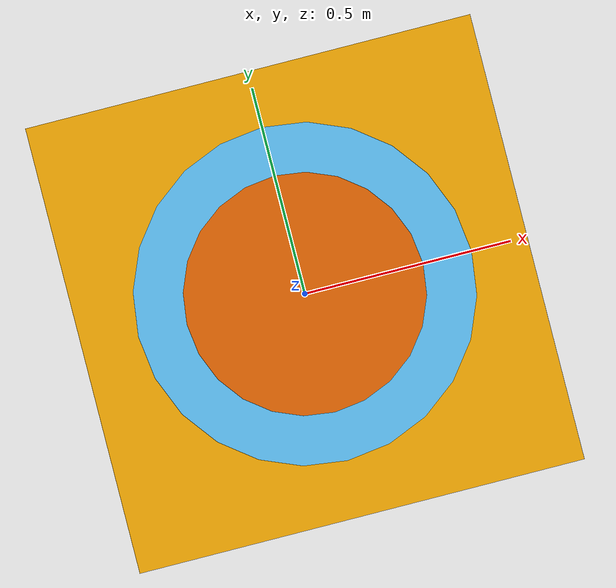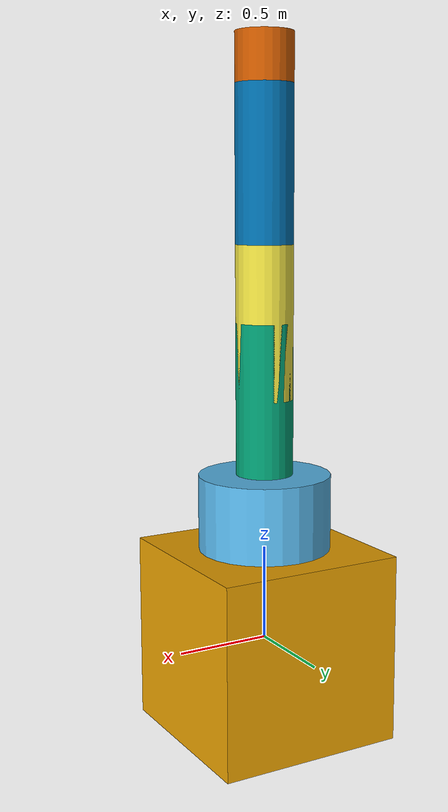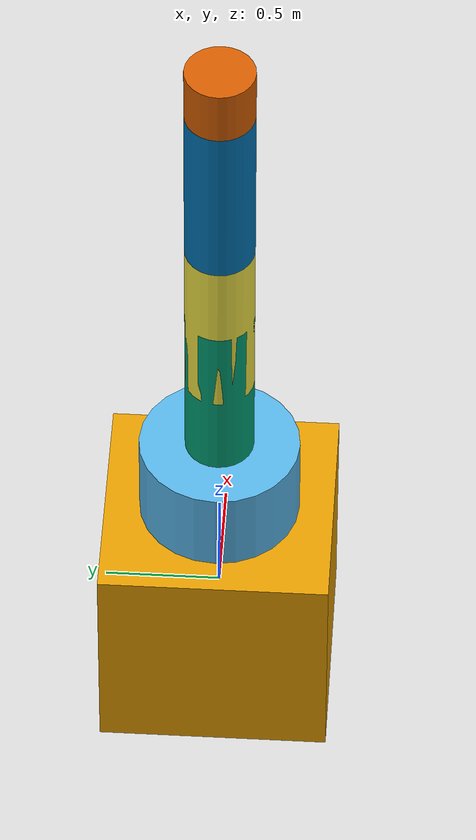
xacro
<?xml version="1.0" ?>
<robot name="mrm" xmlns:xacro="http://www.ros.org/wiki/xacro">

	<xacro:include filename= "$(find mrm_description)/urdf/links_joints.xacro" />

	<m_link_box name="base_link"
		origin_rpy="0 0 0" origin_xyz="0 0 0"
		mass="1024"
		ixx="170.667" ixy="0" ixz="0"
		iyy="170.667" iyz="0"
		izz="170.667"
		size="1 1 1" />

	<m_joint name="base_link__link_01" type="revolute"
		axis_xyz="0 0 1"
		origin_rpy="0 0 0" origin_xyz="0 0 0.5"
		parent="base_link" child="link_01"
		limit_e="1000" limit_l="-3.14" limit_u="3.14" limit_v="0.5" />

	<m_link_cylinder name="link_01"
		origin_rpy="0 0 0" origin_xyz="0 0 0.2"
		mass="157.633"
		ixx="13.235" ixy="0" ixz="0"
		iyy="13.235" iyz="0"
		izz="9.655"
		length="0.4" radius="0.35" />

	<m_joint name="link_01__link_02" type="revolute"
		axis_xyz="0 1 0"
		origin_rpy="0 0 0" origin_xyz="0 0 0.4"
		parent="link_01" child="link_02"
		limit_e="1000" limit_l="-3.14" limit_u="3.14" limit_v="0.5" />

	<m_link_cylinder name="link_02"
		origin_rpy="0 0 0" origin_xyz="0 0 0.4"
		mass="57.906"
		ixx="12.679" ixy="0" ixz="0"
		iyy="12.679" iyz="0"
		izz="0.651"
		radius="0.15" length="0.8" />

	<m_joint name="link_02__link_03" type="revolute"
		axis_xyz="0 1 0"
		origin_rpy="0 0 0" origin_xyz="0 0 0.4"
		parent="link_02" child="link_03"
		limit_e="1000" limit_l="0" limit_u="0.75" limit_v="0.5" />

	<m_link_cylinder name="link_03"
		origin_rpy="0 0 0" origin_xyz="0 0 0.4"
		mass="57.906"
		ixx="12.679" ixy="0" ixz="0"
		iyy="12.679" iyz="0"
		izz="0.651"
		radius="0.15" length="0.8" />

	<m_joint name="link_03__link_04" type="revolute"
		axis_xyz="0 1 0"
		origin_rpy="0 0 0" origin_xyz="0 0 0.8"
		parent="link_03" child="link_04"
		limit_e="1000" limit_l="0" limit_u="0.75" limit_v="0.5" />

	<m_link_cylinder name="link_04"
		origin_rpy="0 0 0" origin_xyz="0 0 0.4"
		mass="57.906"
		ixx="12.679" ixy="0" ixz="0"
		iyy="12.679" iyz="0"
		izz="0.651"
		radius="0.15" length="0.8" />

	<m_joint name="link_04__link_05" type="revolute"
		axis_xyz="0 0 1"
		origin_rpy="0 0 0" origin_xyz="0 0 0.8"
		parent="link_04" child="link_05"
		limit_e="1000" limit_l="-3.14" limit_u="3.14" limit_v="0.5" />

	<m_link_cylinder name="link_05"
		origin_rpy="0 0 0" origin_xyz="0 0 0.125"
		mass="18.056"
		ixx="0.479" ixy="0" ixz="0"
		iyy="0.479" iyz="0"
		izz="0.204"
		radius="0.15" length="0.25" />

	<gazebo>
		<plugin name="gazebo_ros_control" filename="libgazebo_ros_control.so">
		</plugin>
	</gazebo>
</robot>

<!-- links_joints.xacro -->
<robot xmlns:xacro="http://www.ros.org/wiki/xacro">

	<xacro:macro name="m_joint" params="name type axis_xyz origin_rpy origin_xyz parent child limit_e limit_l limit_u limit_v">
	<joint name="${name}" type="${type}">
	 <axis xyz="${axis_xyz}" />
	 <limit effort="${limit_e}" lower="${limit_l}" upper="${limit_u}" velocity="${limit_v}" />
	 <origin rpy="${origin_rpy}" xyz="${origin_xyz}" />
	 <parent link="${parent}" />
 	 <child link="${child}" />
	 </joint>
	 <transmission name="trans_${name}">
		<type>transmission_interface/SimpleTransmission</type>
		<joint name="${name}">
			<hardwareInterface>hardware_interface/EffortJointInterface</hardwareInterface>
		</joint>
		<actuator name="motor_${name}">
			<hardwareInterface>hardware_interface/EffortJointInterface</hardwareInterface>
			<mechanicalReduction>1</mechanicalReduction>
		</actuator>
	</transmission>
	</xacro:macro>

	<xacro:macro name="m_link_cylinder" params="name origin_xyz origin_rpy radius length mass ixx ixy ixz iyy iyz izz">
	 <link name="${name}">
	 <inertial>
		<mass value="${mass}" />
		<origin rpy="${origin_rpy}" xyz="${origin_xyz}" />
		<inertia ixx="${ixx}" ixy="${ixy}" ixz="${ixz}" iyy="${iyy}" iyz="${iyz}" izz="${izz}" />
	</inertial>
	<collision>
		<origin rpy="${origin_rpy}" xyz="${origin_xyz}" />
		<geometry>
			<cylinder radius="${radius}" length="${length}" />
		</geometry>
	</collision>
	 <visual>
		<origin rpy="${origin_rpy}" xyz="${origin_xyz}" />
	 	<geometry>
		 <cylinder radius="${radius}" length="${length}" />
		</geometry>
	</visual>
	</link>
	</xacro:macro>

	<xacro:macro name="m_link_box" params="name origin_xyz origin_rpy size mass ixx ixy ixz iyy iyz izz">
	 <link name="${name}">
	 <inertial>
		<mass value="${mass}" />
		<origin rpy="${origin_rpy}" xyz="${origin_xyz}" />
		<inertia ixx="${ixx}" ixy="${ixy}" ixz="${ixz}" iyy="${iyy}" iyz="${iyz}" izz="${izz}" />
	 </inertial>
	 <collision>
		<origin rpy="${origin_rpy}" xyz="${origin_xyz}" />
		<geometry>
			<box size="${size}" />
		</geometry>
	 </collision>
	 <visual>
	  <origin rpy="${origin_rpy}" xyz="${origin_xyz}" />
	 <geometry>
	 	<box size="${size}" />
		</geometry>
	</visual>
	</link>
	</xacro:macro>
</robot>
